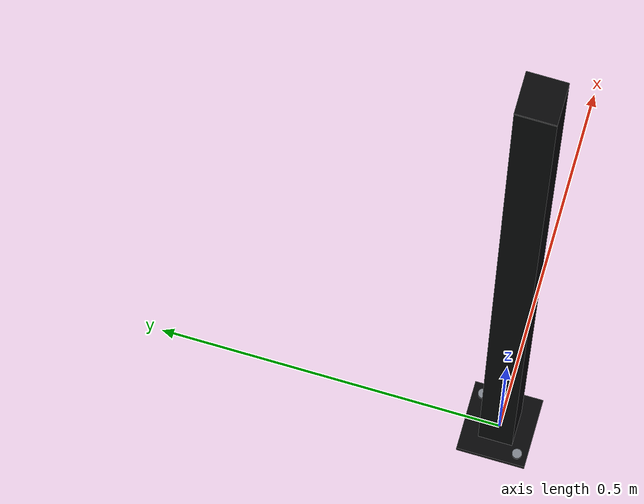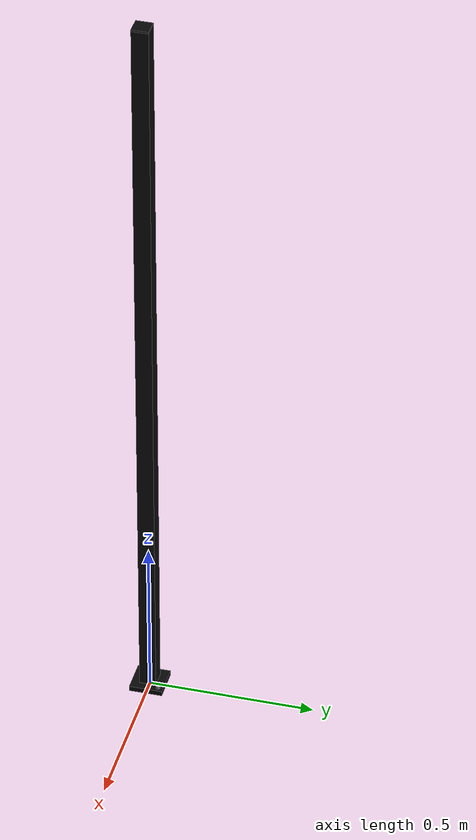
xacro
<?xml version="1.0"?>
<!-- CC0. Origin: floor center. height = panel height + 100 mm. -->
<robot xmlns:xacro="http://www.ros.org/wiki/xacro" name="x-guard-classic-post">
  <xacro:include filename="../../equipment-common/visual/primitives.xacro"/>
  <xacro:arg name="height" default="2.3"/><xacro:arg name="post_finish" default="graphite-black"/>
  <xacro:property name="h" value="$(arg height)"/>
  <material name="finish"><color rgba="${'0.90 0.72 0.03 1' if '$(arg post_finish)' == 'zinc-yellow' else ('0.015 0.12 0.38 1' if '$(arg post_finish)' == 'signal-blue' else ('0.63 0.025 0.025 1' if '$(arg post_finish)' == 'traffic-red' else '0.035 0.037 0.040 1'))}"/></material>
  <material name="cap"><color rgba="0.025 0.027 0.030 1"/></material>
  <material name="steel"><color rgba="0.50 0.52 0.55 1"/></material>
  <link name="root"/>
  <xacro:box name="post" size="0.05 0.05 ${h-0.005}" xyz="0 0 ${(h-0.005)/2}" mat="finish"/>
  <xacro:box name="top_plug" size="0.05 0.05 0.005" xyz="0 0 ${h-0.0025}" mat="cap"/>
  <!-- Classic has a covered welded foot, unlike Premium's separate foot.
       Cover and bolt dimensions below are inferred, not mounting-hole data. -->
  <xacro:box name="foot_cover" size="0.10 0.10 0.016" xyz="0 0 0.008" mat="cap"/>
  <xacro:cylinder name="anchor_left" radius="0.007" length="0.006" xyz="-0.035 -0.035 0.019" rpy="0 0 0" mat="steel"/>
  <xacro:cylinder name="anchor_right" radius="0.007" length="0.006" xyz="0.035 0.035 0.019" rpy="0 0 0" mat="steel"/>
</robot>

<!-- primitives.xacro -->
<!-- CC0. Visual-only primitives, each with a stable removable resident name. -->
<robot xmlns:xacro="http://www.ros.org/wiki/xacro">
  <xacro:macro name="box" params="name size xyz mat">
    <link name="${name}"><visual><origin xyz="${xyz}"/>
      <geometry><box size="${size}"/></geometry><material name="${mat}"/>
    </visual></link>
    <joint name="j_${name}" type="fixed"><parent link="root"/><child link="${name}"/></joint>
  </xacro:macro>
  <xacro:macro name="cylinder" params="name radius length xyz rpy mat">
    <link name="${name}"><visual><origin xyz="${xyz}" rpy="${rpy}"/>
      <geometry><cylinder radius="${radius}" length="${length}"/></geometry><material name="${mat}"/>
    </visual></link>
    <joint name="j_${name}" type="fixed"><parent link="root"/><child link="${name}"/></joint>
  </xacro:macro>
  <xacro:macro name="mesh" params="name file xyz mat">
    <link name="${name}"><visual><origin xyz="${xyz}"/>
      <geometry><mesh filename="${file}"/></geometry><material name="${mat}"/>
    </visual></link>
    <joint name="j_${name}" type="fixed"><parent link="root"/><child link="${name}"/></joint>
  </xacro:macro>
</robot>
